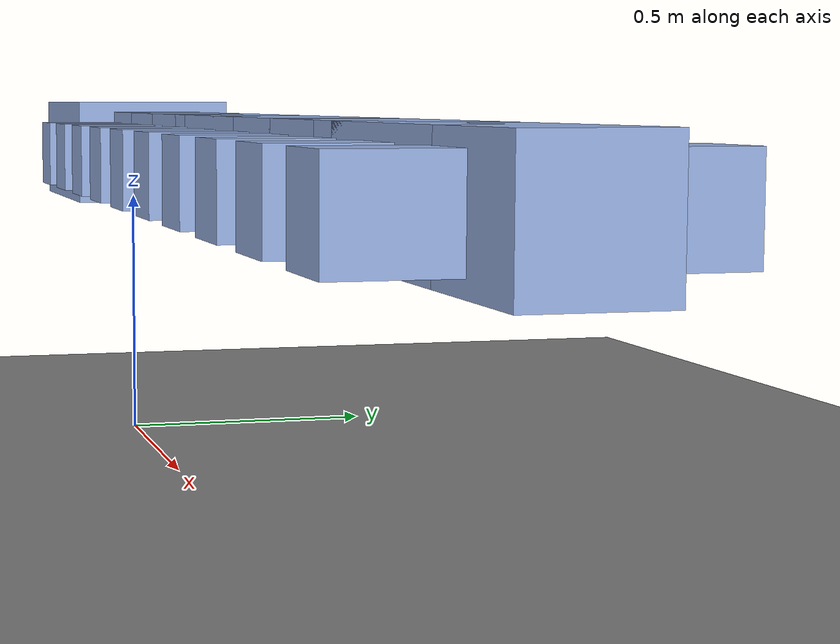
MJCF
<mujoco model="genotype_creature">
  <compiler angle="degree" />
  <option gravity="0 0 0" density="1000" viscosity="0.001" />
  <default>
    <geom type="box" density="500" friction="1.0 0.5 0.5" contype="0" conaffinity="0" />
    <joint limited="true" range="-45 45" damping="2.0" />
    <motor ctrllimited="true" />
  </default>
  <worldbody>
    <geom name="floor" type="plane" size="5 5 0.1" pos="0 0 -0.05" />
    <light pos="0 0 3" />
    <body name="body_1" pos="0 0 0.6">
      <joint type="free" name="body_joint_1" />
      <geom name="body_1_geom" size="0.25 0.15 0.1" rgba="0.6 0.7 0.9 1" />
      <body name="segment_2" pos="0.28 0.0 0.0">
        <joint type="hinge" name="segment_joint_2" axis="0 1 0" />
        <geom name="segment_2_geom" size="0.18 0.08 0.08" rgba="0.6 0.7 0.9 1" />
        <body name="segment_3" pos="0.22 0.0 0.0">
          <joint type="hinge" name="segment_joint_3" axis="0 1 0" />
          <geom name="segment_3_geom" size="0.18 0.08 0.08" rgba="0.6 0.7 0.9 1" />
          <body name="segment_4" pos="0.22 0.0 0.0">
            <joint type="hinge" name="segment_joint_4" axis="0 1 0" />
            <geom name="segment_4_geom" size="0.18 0.08 0.08" rgba="0.6 0.7 0.9 1" />
            <body name="segment_5" pos="0.22 0.0 0.0">
              <joint type="hinge" name="segment_joint_5" axis="0 1 0" />
              <geom name="segment_5_geom" size="0.18 0.08 0.08" rgba="0.6 0.7 0.9 1" />
              <body name="segment_6" pos="0.22 0.0 0.0">
                <joint type="hinge" name="segment_joint_6" axis="0 1 0" />
                <geom name="segment_6_geom" size="0.18 0.08 0.08" rgba="0.6 0.7 0.9 1" />
                <body name="segment_7" pos="0.22 0.0 0.0">
                  <joint type="hinge" name="segment_joint_7" axis="0 1 0" />
                  <geom name="segment_7_geom" size="0.18 0.08 0.08" rgba="0.6 0.7 0.9 1" />
                  <body name="segment_8" pos="0.22 0.0 0.0">
                    <joint type="hinge" name="segment_joint_8" axis="0 1 0" />
                    <geom name="segment_8_geom" size="0.18 0.08 0.08" rgba="0.6 0.7 0.9 1" />
                    <body name="segment_9" pos="0.22 0.0 0.0">
                      <joint type="hinge" name="segment_joint_9" axis="0 1 0" />
                      <geom name="segment_9_geom" size="0.18 0.08 0.08" rgba="0.6 0.7 0.9 1" />
                      <body name="segment_10" pos="0.22 0.0 0.0">
                        <joint type="hinge" name="segment_joint_10" axis="0 1 0" />
                        <geom name="segment_10_geom" size="0.18 0.08 0.08" rgba="0.6 0.7 0.9 1" />
                        <body name="segment_11" pos="0.22 0.0 0.0">
                          <joint type="hinge" name="segment_joint_11" axis="0 1 0" />
                          <geom name="segment_11_geom" size="0.18 0.08 0.08" rgba="0.6 0.7 0.9 1" />
                          <body name="limb_12" pos="0.0 0.14 0.0">
                            <joint type="hinge" name="limb_joint_12" axis="1 0 0" />
                            <geom name="limb_12_geom" size="0.06 0.08 0.06" rgba="0.6 0.7 0.9 1" />
                          </body>
                          <body name="limb_13" pos="0.0 -0.14 0.0">
                            <joint type="hinge" name="limb_joint_13" axis="1 0 0" />
                            <geom name="limb_13_geom" size="0.06 0.08 0.06" rgba="0.6 0.7 0.9 1" />
                          </body>
                        </body>
                        <body name="limb_14" pos="0.0 0.14 0.0">
                          <joint type="hinge" name="limb_joint_14" axis="1 0 0" />
                          <geom name="limb_14_geom" size="0.06 0.08 0.06" rgba="0.6 0.7 0.9 1" />
                        </body>
                        <body name="limb_15" pos="0.0 -0.14 0.0">
                          <joint type="hinge" name="limb_joint_15" axis="1 0 0" />
                          <geom name="limb_15_geom" size="0.06 0.08 0.06" rgba="0.6 0.7 0.9 1" />
                        </body>
                      </body>
                      <body name="limb_16" pos="0.0 0.14 0.0">
                        <joint type="hinge" name="limb_joint_16" axis="1 0 0" />
                        <geom name="limb_16_geom" size="0.06 0.08 0.06" rgba="0.6 0.7 0.9 1" />
                      </body>
                      <body name="limb_17" pos="0.0 -0.14 0.0">
                        <joint type="hinge" name="limb_joint_17" axis="1 0 0" />
                        <geom name="limb_17_geom" size="0.06 0.08 0.06" rgba="0.6 0.7 0.9 1" />
                      </body>
                    </body>
                    <body name="limb_18" pos="0.0 0.14 0.0">
                      <joint type="hinge" name="limb_joint_18" axis="1 0 0" />
                      <geom name="limb_18_geom" size="0.06 0.08 0.06" rgba="0.6 0.7 0.9 1" />
                    </body>
                    <body name="limb_19" pos="0.0 -0.14 0.0">
                      <joint type="hinge" name="limb_joint_19" axis="1 0 0" />
                      <geom name="limb_19_geom" size="0.06 0.08 0.06" rgba="0.6 0.7 0.9 1" />
                    </body>
                  </body>
                  <body name="limb_20" pos="0.0 0.14 0.0">
                    <joint type="hinge" name="limb_joint_20" axis="1 0 0" />
                    <geom name="limb_20_geom" size="0.06 0.08 0.06" rgba="0.6 0.7 0.9 1" />
                  </body>
                  <body name="limb_21" pos="0.0 -0.14 0.0">
                    <joint type="hinge" name="limb_joint_21" axis="1 0 0" />
                    <geom name="limb_21_geom" size="0.06 0.08 0.06" rgba="0.6 0.7 0.9 1" />
                  </body>
                </body>
                <body name="limb_22" pos="0.0 0.14 0.0">
                  <joint type="hinge" name="limb_joint_22" axis="1 0 0" />
                  <geom name="limb_22_geom" size="0.06 0.08 0.06" rgba="0.6 0.7 0.9 1" />
                </body>
                <body name="limb_23" pos="0.0 -0.14 0.0">
                  <joint type="hinge" name="limb_joint_23" axis="1 0 0" />
                  <geom name="limb_23_geom" size="0.06 0.08 0.06" rgba="0.6 0.7 0.9 1" />
                </body>
              </body>
              <body name="limb_24" pos="0.0 0.14 0.0">
                <joint type="hinge" name="limb_joint_24" axis="1 0 0" />
                <geom name="limb_24_geom" size="0.06 0.08 0.06" rgba="0.6 0.7 0.9 1" />
              </body>
              <body name="limb_25" pos="0.0 -0.14 0.0">
                <joint type="hinge" name="limb_joint_25" axis="1 0 0" />
                <geom name="limb_25_geom" size="0.06 0.08 0.06" rgba="0.6 0.7 0.9 1" />
              </body>
            </body>
            <body name="limb_26" pos="0.0 0.14 0.0">
              <joint type="hinge" name="limb_joint_26" axis="1 0 0" />
              <geom name="limb_26_geom" size="0.06 0.08 0.06" rgba="0.6 0.7 0.9 1" />
            </body>
            <body name="limb_27" pos="0.0 -0.14 0.0">
              <joint type="hinge" name="limb_joint_27" axis="1 0 0" />
              <geom name="limb_27_geom" size="0.06 0.08 0.06" rgba="0.6 0.7 0.9 1" />
            </body>
          </body>
          <body name="limb_28" pos="0.0 0.14 0.0">
            <joint type="hinge" name="limb_joint_28" axis="1 0 0" />
            <geom name="limb_28_geom" size="0.06 0.08 0.06" rgba="0.6 0.7 0.9 1" />
          </body>
          <body name="limb_29" pos="0.0 -0.14 0.0">
            <joint type="hinge" name="limb_joint_29" axis="1 0 0" />
            <geom name="limb_29_geom" size="0.06 0.08 0.06" rgba="0.6 0.7 0.9 1" />
          </body>
        </body>
        <body name="limb_30" pos="0.0 0.14 0.0">
          <joint type="hinge" name="limb_joint_30" axis="1 0 0" />
          <geom name="limb_30_geom" size="0.06 0.08 0.06" rgba="0.6 0.7 0.9 1" />
        </body>
        <body name="limb_31" pos="0.0 -0.14 0.0">
          <joint type="hinge" name="limb_joint_31" axis="1 0 0" />
          <geom name="limb_31_geom" size="0.06 0.08 0.06" rgba="0.6 0.7 0.9 1" />
        </body>
      </body>
    </body>
  </worldbody>
  <actuator>
    <motor name="segment_joint_2_motor_1" joint="segment_joint_2" gear="2.0" ctrlrange="-1.0 1.0" />
    <motor name="segment_joint_3_motor_2" joint="segment_joint_3" gear="2.0" ctrlrange="-1.0 1.0" />
    <motor name="segment_joint_4_motor_3" joint="segment_joint_4" gear="2.0" ctrlrange="-1.0 1.0" />
    <motor name="segment_joint_5_motor_4" joint="segment_joint_5" gear="2.0" ctrlrange="-1.0 1.0" />
    <motor name="segment_joint_6_motor_5" joint="segment_joint_6" gear="2.0" ctrlrange="-1.0 1.0" />
    <motor name="segment_joint_7_motor_6" joint="segment_joint_7" gear="2.0" ctrlrange="-1.0 1.0" />
    <motor name="segment_joint_8_motor_7" joint="segment_joint_8" gear="2.0" ctrlrange="-1.0 1.0" />
    <motor name="segment_joint_9_motor_8" joint="segment_joint_9" gear="2.0" ctrlrange="-1.0 1.0" />
    <motor name="segment_joint_10_motor_9" joint="segment_joint_10" gear="2.0" ctrlrange="-1.0 1.0" />
    <motor name="segment_joint_11_motor_10" joint="segment_joint_11" gear="2.0" ctrlrange="-1.0 1.0" />
    <motor name="limb_joint_12_motor_11" joint="limb_joint_12" gear="2.0" ctrlrange="-1.0 1.0" />
    <motor name="limb_joint_13_motor_12" joint="limb_joint_13" gear="2.0" ctrlrange="-1.0 1.0" />
    <motor name="limb_joint_14_motor_13" joint="limb_joint_14" gear="2.0" ctrlrange="-1.0 1.0" />
    <motor name="limb_joint_15_motor_14" joint="limb_joint_15" gear="2.0" ctrlrange="-1.0 1.0" />
    <motor name="limb_joint_16_motor_15" joint="limb_joint_16" gear="2.0" ctrlrange="-1.0 1.0" />
    <motor name="limb_joint_17_motor_16" joint="limb_joint_17" gear="2.0" ctrlrange="-1.0 1.0" />
    <motor name="limb_joint_18_motor_17" joint="limb_joint_18" gear="2.0" ctrlrange="-1.0 1.0" />
    <motor name="limb_joint_19_motor_18" joint="limb_joint_19" gear="2.0" ctrlrange="-1.0 1.0" />
    <motor name="limb_joint_20_motor_19" joint="limb_joint_20" gear="2.0" ctrlrange="-1.0 1.0" />
    <motor name="limb_joint_21_motor_20" joint="limb_joint_21" gear="2.0" ctrlrange="-1.0 1.0" />
    <motor name="limb_joint_22_motor_21" joint="limb_joint_22" gear="2.0" ctrlrange="-1.0 1.0" />
    <motor name="limb_joint_23_motor_22" joint="limb_joint_23" gear="2.0" ctrlrange="-1.0 1.0" />
    <motor name="limb_joint_24_motor_23" joint="limb_joint_24" gear="2.0" ctrlrange="-1.0 1.0" />
    <motor name="limb_joint_25_motor_24" joint="limb_joint_25" gear="2.0" ctrlrange="-1.0 1.0" />
    <motor name="limb_joint_26_motor_25" joint="limb_joint_26" gear="2.0" ctrlrange="-1.0 1.0" />
    <motor name="limb_joint_27_motor_26" joint="limb_joint_27" gear="2.0" ctrlrange="-1.0 1.0" />
    <motor name="limb_joint_28_motor_27" joint="limb_joint_28" gear="2.0" ctrlrange="-1.0 1.0" />
    <motor name="limb_joint_29_motor_28" joint="limb_joint_29" gear="2.0" ctrlrange="-1.0 1.0" />
    <motor name="limb_joint_30_motor_29" joint="limb_joint_30" gear="2.0" ctrlrange="-1.0 1.0" />
    <motor name="limb_joint_31_motor_30" joint="limb_joint_31" gear="2.0" ctrlrange="-1.0 1.0" />
  </actuator>
</mujoco>
